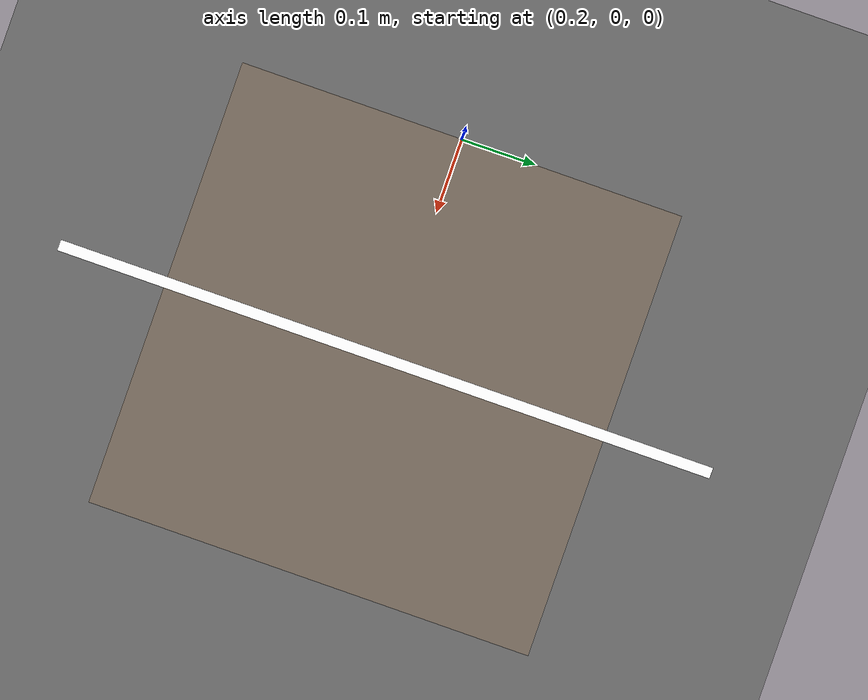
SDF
<?xml version="1.0"?>
<sdf version="1.10">
  <world name="beehive_world">

    <gravity>0 0 0</gravity>

    <physics name="1ms" type="ignored">
      <max_step_size>0.001</max_step_size>
      <real_time_factor>1.0</real_time_factor>
    </physics>

    <plugin filename="gz-sim-physics-system"
            name="gz::sim::systems::Physics"/>
    <plugin filename="gz-sim-user-commands-system"
            name="gz::sim::systems::UserCommands"/>
    <plugin filename="gz-sim-scene-broadcaster-system"
            name="gz::sim::systems::SceneBroadcaster"/>
    <plugin filename="gz-sim-sensors-system"
            name="gz::sim::systems::Sensors">
      <render_engine>ogre2</render_engine>
    </plugin>

    <scene>
      <ambient>0.6 0.6 0.6 1</ambient>
      <background>0.7 0.7 0.75 1</background>
      <grid>false</grid>
    </scene>

    <light type="directional" name="sun">
      <cast_shadows>true</cast_shadows>
      <pose>0 0 5 0 0 0</pose>
      <diffuse>1 1 1 1</diffuse>
      <specular>0.3 0.3 0.3 1</specular>
      <direction>-0.3 0.2 -0.9</direction>
    </light>

    <!-- ground -->
    <model name="ground_plane">
      <static>true</static>
      <link name="link">
        <collision name="collision">
          <geometry><plane><normal>0 0 1</normal><size>10 10</size></plane></geometry>
        </collision>
        <visual name="visual">
          <geometry><plane><normal>0 0 1</normal><size>10 10</size></plane></geometry>
          <material>
            <ambient>0.3 0.3 0.3 1</ambient>
            <diffuse>0.4 0.4 0.4 1</diffuse>
          </material>
        </visual>
      </link>
    </model>

    <!-- table: top face at z = 0 (body center at z = -0.02) -->
    <include>
      <uri>model://work_surface</uri>
      <pose>0.5 0.0 -0.02 0 0 0</pose>
    </include>

    <include>
      <name>honeycomb_plane</name>
      <uri>model://honeycomb_plane</uri>
      <pose>0.5 0.0 0.40 0 0 0</pose>
    </include>

    <model name="honeycomb_camera">
      <static>true</static>
      <pose>0.0 0.0 0.40 0 0 0</pose>
      <link name="link">
        <sensor name="camera" type="camera">
          <always_on>1</always_on>
          <update_rate>15</update_rate>
          <visualize>true</visualize>
          <!-- image on this topic; camera_info auto on .../camera_info -->
          <topic>/honeycomb_camera/image</topic>
          <camera>
            <horizontal_fov>1.0808</horizontal_fov>
            <image>
              <width>1024</width>
              <height>683</height>
              <format>R8G8B8</format>
            </image>
            <clip>
              <near>0.05</near>
              <far>10.0</far>
            </clip>
            <optical_frame_id>honeycomb_camera_optical_frame</optical_frame_id>
          </camera>
        </sensor>
      </link>
    </model>

  </world>
</sdf>

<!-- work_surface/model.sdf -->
<sdf version="1.10">
  <model name="work_surface">
    <static>true</static>
    <link name="link">
      <collision name="collision">
        <geometry>
          <box><size>0.60 0.60 0.04</size></box>
        </geometry>
      </collision>
      <visual name="visual">
        <geometry>
          <box><size>0.60 0.60 0.04</size></box>
        </geometry>
        <material>
          <ambient>0.25 0.22 0.20 1</ambient>
          <diffuse>0.45 0.40 0.35 1</diffuse>
          <specular>0.1 0.1 0.1 1</specular>
        </material>
      </visual>
    </link>
  </model>
</sdf>

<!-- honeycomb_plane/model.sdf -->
<sdf version="1.10">
  <model name="honeycomb_plane">
    <static>true</static>
    <link name="link">
      <!-- thin slab: X = thickness, Y = width (0.60), Z = height (0.40) -->
      <collision name="collision">
        <geometry>
          <box><size>0.01 0.60 0.40</size></box>
        </geometry>
      </collision>

      <visual name="visual">
        <geometry>
          <box><size>0.01 0.60 0.40</size></box>
        </geometry>
        <material>
          <diffuse>1 1 1 1</diffuse>
          <specular>0.1 0.1 0.1 1</specular>
          <pbr>
            <metal>
              <albedo_map>materials/textures/comb.jpg</albedo_map>
              <metalness>0.0</metalness>
              <roughness>0.95</roughness>
            </metal>
          </pbr>
        </material>
      </visual>
    </link>
  </model>
</sdf>
